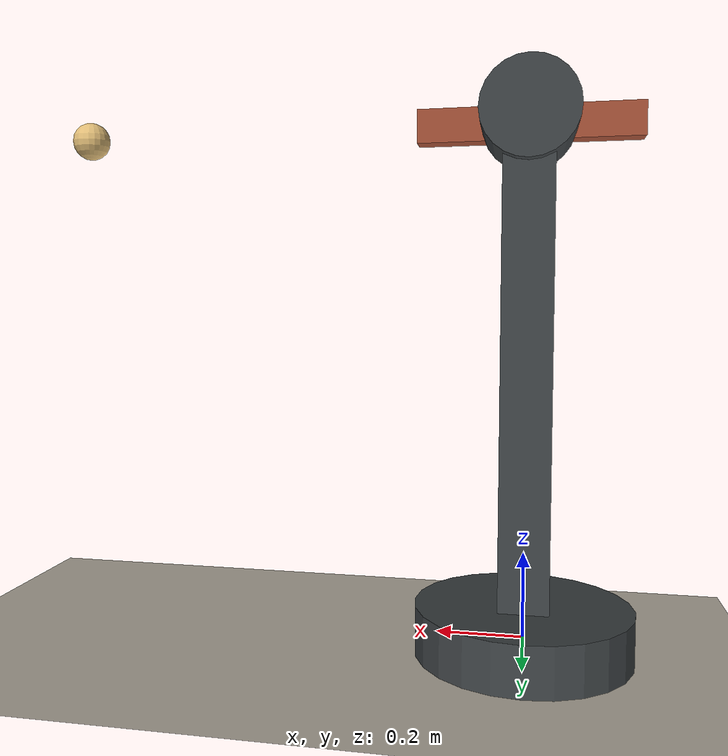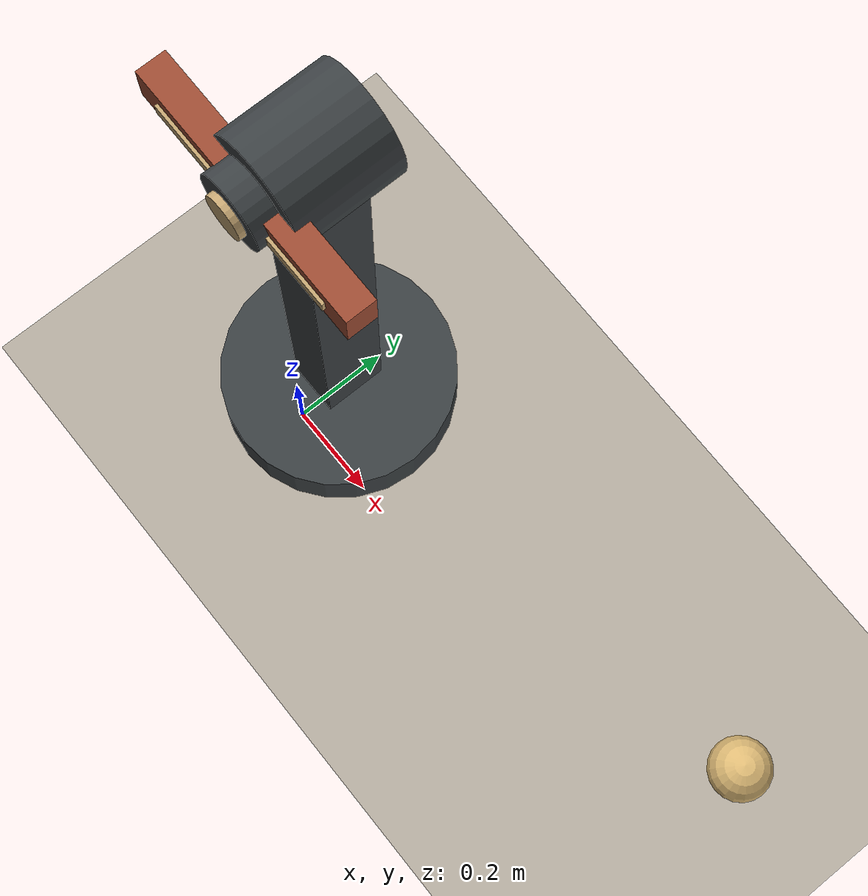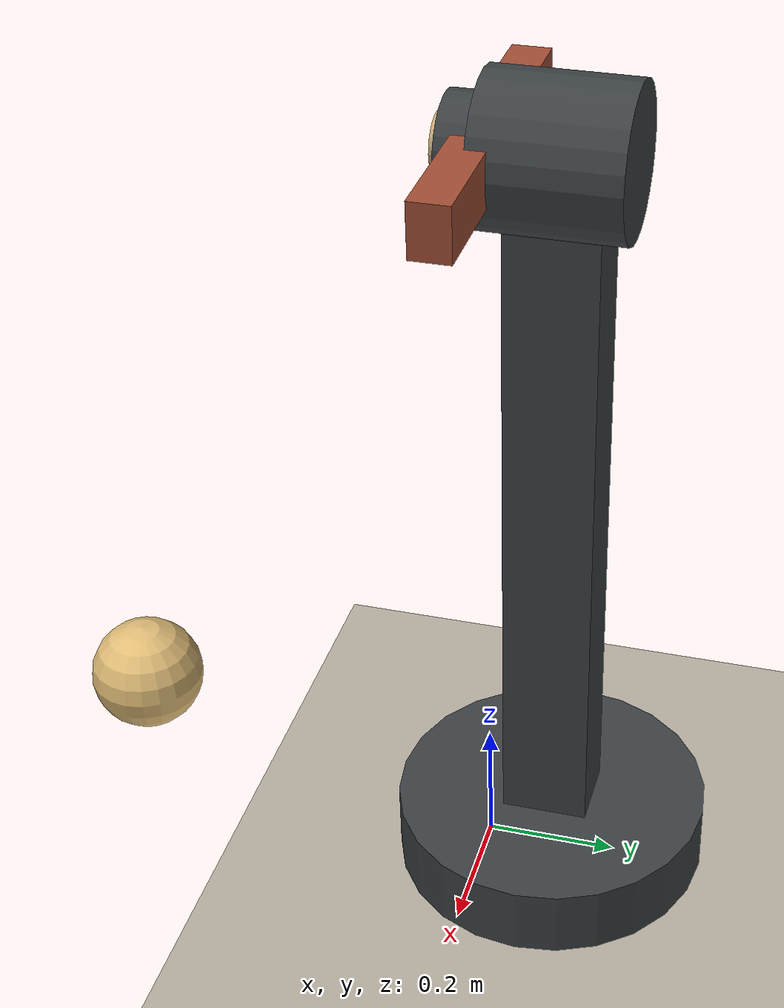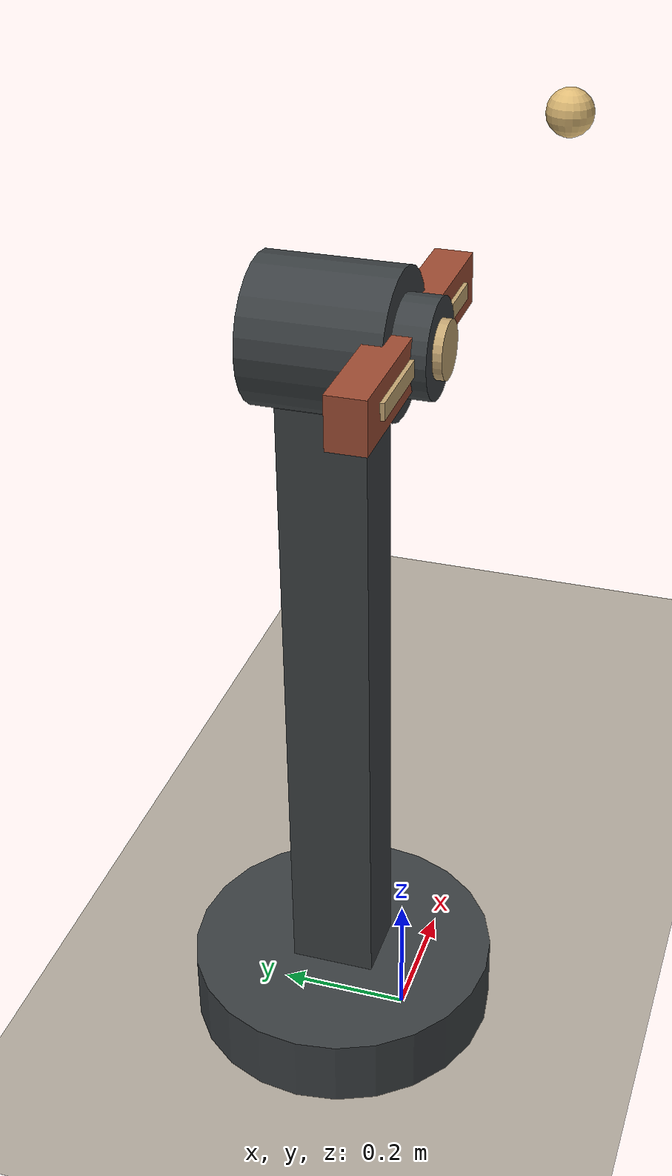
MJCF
<mujoco model="throwing arm">
  <include file="theme.xml"/>
  <default>
    <geom contype="0" conaffinity="0"/>
    <joint axis="0 -1 0" damping="0.015"/>
    <default class="hub">
      <geom type="cylinder" size=".07 .049" quat="1 1 0 0" material="metal"/>
    </default>
  </default>
  <asset>
    <material name="clay" rgba=".62 .30 .20 1" specular=".35" shininess=".35"/>
    <material name="metal" rgba=".23 .25 .26 1" specular=".5" shininess=".5"/>
    <material name="trim" rgba=".77 .65 .45 1" specular=".5" shininess=".5"/>
    <material name="ball" rgba=".87 .73 .46 1" specular=".35" shininess=".35"/>
  </asset>
  <worldbody>
    <geom type="cylinder" pos="0 .10 .055" size=".24 .055" material="metal"/>
    <geom type="box" pos="0 .10 .59" size=".055 .065 .50" material="metal"/>
    <geom type="cylinder" pos="0 .10 1.18" size=".105 .10" quat="1 1 0 0" material="metal"/>
    <body name="upper" pos="0 0 1.18">
      <joint name="shoulder"/>
      <inertial pos="0 0 0" mass="1" diaginertia="1 1 1"/>
      <geom name="upper_beam" type="box" size=".25 .028 .038" material="clay"/>
      <geom name="upper_trim" type="box" pos="0 -.03 0" size=".20 .004 .012" material="trim"/>
      <geom name="upper_hub" class="hub"/>
      <geom type="cylinder" pos="0 -.054 0" size=".041 .008" quat="1 1 0 0" material="trim"/>
      <body name="lower">
        <joint name="elbow"/>
        <inertial pos="0 0 0" mass="1" diaginertia="1 1 1"/>
        <geom name="lower_beam" type="box" size=".25 .028 .038" material="clay"/>
        <geom name="lower_trim" type="box" pos="0 -.03 0" size=".20 .004 .012" material="trim"/>
        <geom class="hub"/>
        <geom type="cylinder" pos="0 -.054 0" size=".041 .008" quat="1 1 0 0" material="trim"/>
        <body name="hand">
          <geom type="sphere" size=".055" mass=".04" material="metal"/>
          <site name="grip" pos=".065 0 0" size=".005" rgba="0 0 0 0"/>
        </body>
      </body>
    </body>
    <body name="ball" pos="1.065 0 1.18">
      <freejoint/>
      <geom name="ball" type="sphere" size=".045" mass=".15" material="ball"
            contype="1" conaffinity="1" friction=".6 .01 .001" solref=".015 1"/>
      <site name="payload" size=".005" rgba="0 0 0 0"/>
    </body>
  </worldbody>
  <equality><connect name="grasp" site1="grip" site2="payload" solref=".004 1"/></equality>
  <actuator>
    <motor name="shoulder_motor" joint="shoulder"/>
    <motor name="elbow_motor" joint="elbow"/>
  </actuator>
</mujoco>

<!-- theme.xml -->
<mujoco>
  <asset>
    <texture name="checker" type="2d" builtin="checker" rgb1=".72 .69 .64" rgb2=".68 .65 .6" width="300" height="300"/>
    <material name="ground" texture="checker" texrepeat=".625 .625" texuniform="true"/>
    <texture name="sky" type="skybox" builtin="flat" rgb1=".47 .45 .42" rgb2=".47 .45 .42" width="32" height="32"/>
  </asset>
  <visual>
    <headlight diffuse=".15 .15 .15" ambient=".3 .3 .3" specular=".2 .2 .2"/>
    <rgba haze=".47 .45 .42 1" fog=".47 .45 .42 1"/>
    <map fogstart="4" fogend="14"/>
    <quality shadowsize="4096" offsamples="8"/>
    <global offwidth="2400" offheight="1800"/>  <!-- offscreen renders match the window -->
  </visual>
  <worldbody>
    <geom name="floor" type="plane" size="0 0 .1" material="ground"/>
    <light name="sun" directional="true" dir="-.7 .5 -.6" pos="3.5 -2.5 5" diffuse=".65 .65 .65" specular=".3 .3 .3"/>
  </worldbody>
</mujoco>
